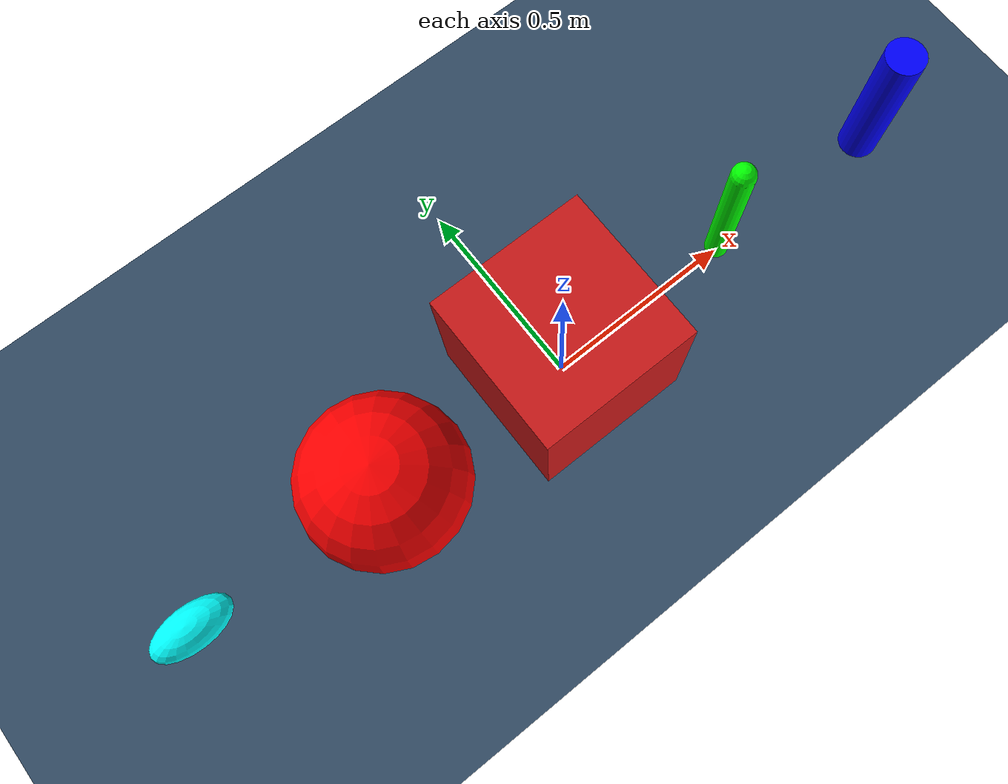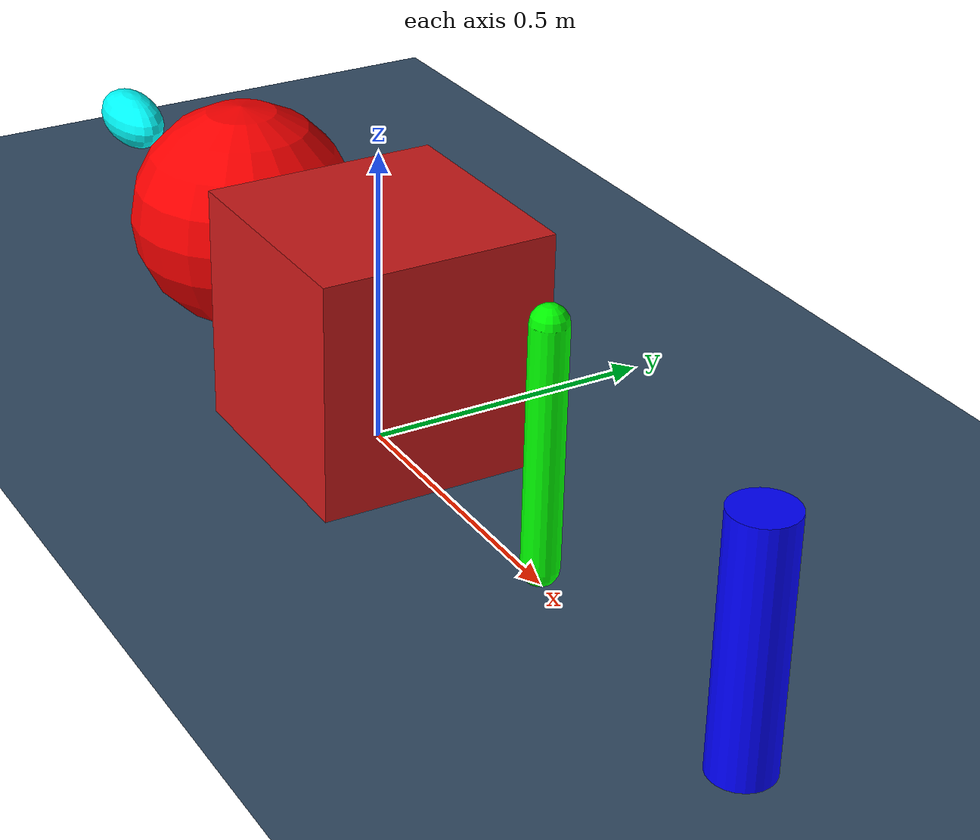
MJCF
<mujoco model="static_box">
    <option gravity="0 0 -9.81" timestep="0.002"/>
    <visual>
        <map znear="0.01" zfar="5"/>
    </visual>
    <worldbody>
        <!--Tọa độ mặc định của sàn pos = 0 0 0-->
        <geom name="ground" type="plane" size="5 5 0.1" rgba="0.2 0.3 0.4 1"/>

        <!--khối vuông kích thước 0.2 có tọa độ khối tâm pos = 0 0 0.2-->
        <geom name="cube" type="box" size="0.2 0.2 0.2" pos="0 0 0.2" rgba="0.8 0.1 0.1 1"/>

        <!--khối trụ 2 đầu cầu-->
        <geom name="link" type="capsule" size="0.03 0.2" pos="0.5 0 0.23" rgba="0 1 0 1"/>

        <!--khối cầu-->
        <geom name="ball" type="sphere" size="0.2" pos="-0.5 0 0.2" rgba="1 0 0 1"/>

        <!--Khối trụ tròn-->
        <geom name="pillar" type="cylinder" size="0.05 0.2" pos="1 0 0.2" rgba="0 0 1 1"/>

        <!--Khối ellipsoid-->
        <geom name="oval" type="ellipsoid" size="0.1 0.05 0.05" pos="-1 0 0.2" rgba="0 1 1 1"/>

    </worldbody>
</mujoco>
